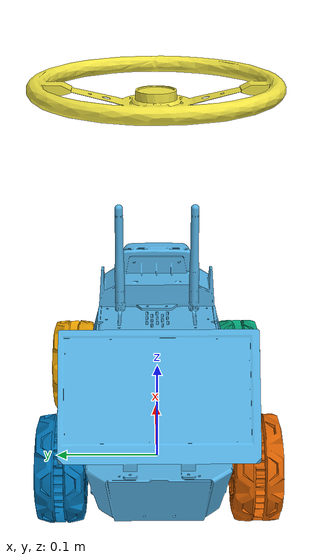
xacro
<?xml version="1.0"?>

<robot name="limo_four_diff" xmlns:xacro="http://ros.org/wiki/xacro">

    <xacro:arg name="robot_name" default="box_bot"/>
    <xacro:property name="general_robot_name" value="$(arg robot_name)"/>

    <xacro:include filename="$(find limo_description)/urdf/limo_xacro.xacro" />
    <xacro:include filename="$(find limo_description)/urdf/limo_steering_hinge.xacro" />

    <!-- Variables -->
    <xacro:property name="M_PI" value="3.14159"/>

    <!-- Vehicle Geometries -->
    <xacro:property name="base_x_size" value="0.13" />
    <xacro:property name="base_y_size" value="0.12" />
    <xacro:property name="base_z_size" value="0.1" />

    <xacro:property name="wheelbase" value="0.2"/>
    <xacro:property name="track" value="0.13"/>
    <xacro:property name="wheel_vertical_offset" value="-0.10" />
    <xacro:property name="base_mass" value="2.1557"/>

    <xacro:property name="wheel_length" value="0.001" />
    <xacro:property name="wheel_radius" value="0.045" />

  <link name="base_footprint"/>

  <joint name="base_joint" type="fixed">
    <parent link="base_footprint"/>
    <child link="base_link"/>
    <origin xyz="0.0 0.0 0.15" rpy="0 0 0"/>
  </joint>
    <!-- Base link -->
    <link name="base_link">
        <visual>
            <origin xyz="0 0 -0.15" rpy="0 0 1.57" />
            <geometry>
                <mesh filename="package://limo_description/meshes/limo_optimal.dae" scale="1 1 1"/>
            </geometry>
        </visual>
        <collision>
            <origin xyz="0 0 0" rpy="0 0 0" />
          <geometry>
              <box size="${base_x_size} ${base_y_size} ${base_z_size}"/>
          </geometry>
        </collision>
    </link>

    <link name="inertial_link">
        <inertial>
            <origin xyz="0.0 0.0 0.0" />
            <mass value="${base_mass}" />
            <inertia ixx="0.0043832566666666675" ixy="0" ixz="0"
                     iyy="0.004832360833333334" iyz="0"
                     izz="0.005622784166666667" />
        </inertial>
    </link>

    <joint name="inertial_joint" type="fixed">
        <origin xyz="0 0 0" rpy="0 0 0" />
        <parent link="base_link" />
        <child link="inertial_link" />
    </joint>

    <xacro:limo_laser parent_prefix="base_link" frame_prefix="laser">
        <origin xyz="0.103 0 -0.034" rpy="0 0 0"/>
    </xacro:limo_laser>

    <xacro:limo_depth_camera parent_prefix="base_link" frame_prefix="depth_camera">
        <origin xyz="0.084 0 0.026" rpy="0 0 0"/>
    </xacro:limo_depth_camera>

    <xacro:limo_imu parent_prefix="base_link" frame_prefix="imu">
        <origin xyz="0.0 0 -0.1" rpy="0 0 0"/>
    </xacro:limo_imu>

  <xacro:limo_left_steering_hinge parent_prefix="base_link" wheel_prefix="front_left">
    <origin xyz="${wheelbase/2} ${track/2} ${wheel_vertical_offset}" rpy="0 0  0" />
  </xacro:limo_left_steering_hinge>

  <xacro:limo_right_steering_hinge parent_prefix="base_link" wheel_prefix="front_right">
    <origin xyz="${wheelbase/2} ${-track/2} ${wheel_vertical_offset}" rpy="${M_PI} 0 0" />
  </xacro:limo_right_steering_hinge>

        <link name="main_steering_link">
            <inertial>
              <mass value="0.25" />
              <inertia ixx="0.00525" ixy="0" ixz="0" iyy="0.00035" iyz="0" izz="0.00525" />
              <origin xyz="0 0 0" />

            </inertial>
            <visual>
                <origin xyz="0 0 0" rpy="0 0 0" />
                <geometry>
                  <mesh filename="package://limo_description/meshes/steering.dae" scale="1 1 1"/>
                </geometry>
            </visual>

        </link>

        <joint name="main_steering" type="revolute">
            <parent link="base_link"/>
            <child link="main_steering_link"/>
            <origin xyz="${wheelbase/2} 0.0 ${wheel_vertical_offset * -2.0}" rpy="${M_PI} 0 0" />
            <axis xyz="0 0 -1" />
            <limit lower="-0.523598767" upper="0.523598767" effort="1000" velocity="10.0" />
            <dynamics damping="0.0" friction="0.0"/>
        </joint>

    <xacro:limo_wheel parent_prefix="base_link" wheel_prefix="rear_left" reflect="1" fixed_on="false">
        <origin xyz="${-wheelbase/2} ${track/2} ${wheel_vertical_offset}" rpy="0 0 0" />
    </xacro:limo_wheel>

    <xacro:limo_wheel parent_prefix="base_link" wheel_prefix="rear_right" reflect="-1" fixed_on="false">
        <origin xyz="${-wheelbase/2} ${-track/2} ${wheel_vertical_offset}" rpy="${M_PI} 0 0" />
    </xacro:limo_wheel>

<xacro:include filename="$(find limo_description)/urdf/limo_four_acker.gazebo" />

    <gazebo>
        <plugin name="gazebo_ros_ackermann_drive_$(arg robot_name)" filename="libtc_gazebo_ros_ackermann_drive.so">

        <ros>
          <namespace>$(arg robot_name)</namespace>
          <remapping>cmd_vel:=cmd_vel</remapping>
          <remapping>odom:=odom</remapping>
          <remapping>distance:=distance</remapping>
          <remapping>steerangle:=steerangle</remapping>
        </ros>

        <update_rate>100.0</update_rate>

        <!-- wheels -->
        <front_left_joint>front_left_wheel</front_left_joint>
        <front_right_joint>front_right_wheel</front_right_joint>
        <rear_left_joint>rear_left_wheel</rear_left_joint>
        <rear_right_joint>rear_right_wheel</rear_right_joint>
        <left_steering_joint>front_left_steering</left_steering_joint>
        <right_steering_joint>front_right_steering</right_steering_joint>
        <steering_wheel_joint>main_steering</steering_wheel_joint>

        <!-- Max absolute steer angle for tyre in radians-->
        <!-- Any cmd_vel angular z greater than this would be capped -->
        <max_steer>0.6458</max_steer>

        <!-- Max absolute steering angle of steering wheel -->
        <max_steering_angle>7.85</max_steering_angle>

        <!-- Max absolute linear speed in m/s -->
        <max_speed>20</max_speed>

        <!-- PID tuning -->
        <left_steering_pid_gain>100 0 1</left_steering_pid_gain>
        <left_steering_i_range>0 0</left_steering_i_range>
        <right_steering_pid_gain>100 0 1</right_steering_pid_gain>
        <right_steering_i_range>0 0</right_steering_i_range>
        <linear_velocity_pid_gain>0.5 0 0</linear_velocity_pid_gain>
        <linear_velocity_i_range>0 0</linear_velocity_i_range>

        <!-- output -->
        <publish_odom>true</publish_odom>
        <publish_odom_tf>true</publish_odom_tf>
        <publish_wheel_tf>true</publish_wheel_tf>
        <publish_distance>true</publish_distance>
        <publish_steerangle>true</publish_steerangle>

        <odometry_frame>odom</odometry_frame>
        <robot_base_frame>base_footprint</robot_base_frame>

      </plugin>
    </gazebo>

    <gazebo reference="imu_link">
    <gravity>true</gravity>
    <sensor name="twr_imu__$(arg robot_name)" type="imu">
      <always_on>true</always_on>
      <update_rate>100</update_rate>
      <visualize>true</visualize>
      <imu>
        <orientation>
          <x>
            <noise type="gaussian">
              <mean>0.0</mean>
              <stddev>2e-3</stddev>
            </noise>
          </x>
          <y>
            <noise type="gaussian">
              <mean>0.0</mean>
              <stddev>2e-3</stddev>
            </noise>
          </y>
          <z>
            <noise type="gaussian">
              <mean>0.0</mean>
              <stddev>2e-3</stddev>
            </noise>
          </z>
        </orientation>
        <angular_velocity>
          <x>
            <noise type="gaussian">
              <mean>0.0</mean>
              <stddev>2e-4</stddev>
            </noise>
          </x>
          <y>
            <noise type="gaussian">
              <mean>0.0</mean>
              <stddev>2e-4</stddev>
            </noise>
          </y>
          <z>
            <noise type="gaussian">
              <mean>0.0</mean>
              <stddev>2e-4</stddev>
            </noise>
          </z>
        </angular_velocity>
        <linear_acceleration>
          <x>
            <noise type="gaussian">
              <mean>0.0</mean>
              <stddev>1.7e-2</stddev>
            </noise>
          </x>
          <y>
            <noise type="gaussian">
              <mean>0.0</mean>
              <stddev>1.7e-2</stddev>
            </noise>
          </y>
          <z>
            <noise type="gaussian">
              <mean>0.0</mean>
              <stddev>1.7e-2</stddev>
            </noise>
          </z>
        </linear_acceleration>
      </imu>
      <plugin name="two_wheeled_robot_imu_$(arg robot_name)" filename="libgazebo_ros_imu_sensor.so">
        <initial_orientation_as_reference>false</initial_orientation_as_reference>
        <frame_name>imu_link</frame_name>
        <ros>
          <remapping>~/out:=$(arg robot_name)/imu</remapping>
        </ros>
      </plugin>
    </sensor>
</gazebo>
<gazebo reference="laser_link">
    <sensor name="laser_$(arg robot_name)" type="ray">
      <always_on>true</always_on>
      <visualize>false</visualize>
      <update_rate>10</update_rate>
      <ray>
        <scan>
          <horizontal>
            <samples>120</samples>
            <resolution>1.000000</resolution>
            <min_angle>-3.14159</min_angle>
            <max_angle>3.14159</max_angle>
          </horizontal>
        </scan>
        <range>
          <min>0.3</min>
          <max>15.0</max>
          <resolution>0.015</resolution>
        </range>
        <noise>
          <type>gaussian</type>
          <mean>0.0</mean>
          <stddev>0.01</stddev>
        </noise>
      </ray>
      <plugin name="scan_$(arg robot_name)" filename="libgazebo_ros_ray_sensor.so">
        <ros>
          <remapping>~/out:=$(arg robot_name)/scan</remapping>
        </ros>
        <output_type>sensor_msgs/LaserScan</output_type>
        <frame_name>laser_link</frame_name>
      </plugin>
    </sensor>
  </gazebo>

    <link name="camera_depth_optical_frame"/>

    <joint name="camera_depth_optical_joint" type="fixed">
      <origin xyz="0 0 0" rpy="${-M_PI/2} 0 ${-M_PI/2}" />
      <parent link="depth_camera_link" />
      <child link="camera_depth_optical_frame" />
    </joint>

<gazebo reference="depth_camera_link">
          <sensor name="sensor_camera_$(arg robot_name)" type="depth">
            <pose>0.0 0.0 0.0 0.0 0.0 0.0</pose>
            <always_on>1</always_on>
            <update_rate>10</update_rate>
            <visualize>1</visualize>

            <camera name="limo_camera">
              <image>
                <format>R8G8B8</format>
                <width>400</width>
                <height>400</height>
              </image>
              <clip>
                <near>0.01</near>
                <far>10.0</far>
              </clip>
            </camera>

            <plugin name="gazebo_ros_depth_camera_sensor_$(arg robot_name)" filename="libgazebo_ros_camera.so">

              <ros>
                <namespace>/$(arg robot_name)</namespace>
                <argument>limo_camera/image_raw:=limo_camera/image</argument>
                <argument>limo_camera/image_depth:=limo_camera/depth/camera_image_depth</argument>
                <argument>limo_camera/camera_info:=limo_camera/camera_info_raw</argument>
                <argument>limo_camera/camera_info_depth:=limo_camera/camera_info_depth</argument>
                <argument>limo_camera/points:=limo_camera/camera_points</argument>
              </ros>
              <camera_name>depth_camera_link</camera_name>
              <frame_name>camera_depth_optical_frame</frame_name>
              <hack_baseline>0.07</hack_baseline>
              <min_depth>0.001</min_depth>

            </plugin>
        </sensor>
          </gazebo>

</robot>

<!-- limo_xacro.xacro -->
<robot name="limo_xacro" xmlns:xacro="http://ros.org/wiki/xacro">
    <xacro:macro name="limo_wheel" params="parent_prefix wheel_prefix reflect *joint_pose visual_on:=true fixed_on:=false">
        <link name="${wheel_prefix}_wheel_link">
            <inertial>
                <origin xyz="0 ${wheel_length/2} 0" rpy="1.57 0 0" />
                <mass value="0.5" />
                <inertia ixx="0.00033749999999999996" ixy="0" ixz="0" iyy="0.00033749999999999996" iyz="0" izz="0.00050625" />
            </inertial>
            <xacro:if value="${visual_on}">
                <visual>
                    <origin xyz="0 0 0" rpy="0 0 0" />
                    <geometry>
                        <mesh filename="package://limo_description/meshes/limo_optimal_wheels.dae" />
                    </geometry>
                </visual>
            </xacro:if>
            <collision>
              <origin xyz="0 ${wheel_length/2} 0" rpy="1.57 0 0" />
              <geometry>
                  <cylinder length="${wheel_length}" radius="${wheel_radius}" />
              </geometry>
            </collision>
        </link>

        <!-- Conditionally set the joint type -->
        <xacro:if value="${fixed_on}">
            <joint name="${wheel_prefix}_wheel" type="fixed">
                <parent link="${parent_prefix}"/>
                <child link="${wheel_prefix}_wheel_link"/>
                <xacro:insert_block name="joint_pose"/>
            </joint>
        </xacro:if>
        <xacro:unless value="${fixed_on}">
            <joint name="${wheel_prefix}_wheel" type="continuous">
                <parent link="${parent_prefix}"/>
                <child link="${wheel_prefix}_wheel_link"/>
                <xacro:insert_block name="joint_pose"/>
                <axis xyz="0 ${reflect*1} 0"/>
                <limit effort="100.0" velocity="10.0"/>
            </joint>
        </xacro:unless>

    </xacro:macro>

    <xacro:macro name="limo_laser" params="parent_prefix frame_prefix *joint_pose">
        <link name='${frame_prefix}_link'>
            <pose>0 0 0 0 0 0</pose>
            <inertial>
                <mass value="0.1"/>
                <origin xyz="0.0 0 0" rpy="0 0 0"/>
                <inertia
                    ixx="1e-6" ixy="0" ixz="0"
                    iyy="1e-6" iyz="0"
                    izz="1e-6"
                />
            </inertial>
            <visual name='laser_visual'>
                <origin xyz="0 0 0" rpy="0 0 0"/>
                <geometry>
                    <cylinder radius="0.02" length="0.01"/>
                </geometry>
            </visual>
            <collision name='laser_collision'>
                <origin xyz="0 0 0" rpy="0 0 0"/>
                <geometry>
                    <cylinder radius="0.032" length="0.016"/>
                </geometry>
            </collision>
        </link>
        <joint type="fixed" name="laser_joint">
            <xacro:insert_block name="joint_pose"/>
            <child link="${frame_prefix}_link"/>
            <parent link="${parent_prefix}"/>
        </joint>
        <gazebo reference="${frame_prefix}_link">
            <material>Gazebo/Yellow</material>
        </gazebo>
    </xacro:macro>

    <xacro:macro name="limo_depth_camera" params="parent_prefix frame_prefix *joint_pose">
        <link name='${frame_prefix}_link'>
            <pose>0 0 0 0 0 0</pose>
            <inertial>
                <mass value="0.1"/>
                <origin xyz="0.0 0 0" rpy="0 0 0"/>
                <inertia
                    ixx="1e-6" ixy="0" ixz="0"
                    iyy="1e-6" iyz="0"
                    izz="1e-6"
                />
            </inertial>
            <collision name='depth_camera_collision'>
                <origin xyz="0 0 0" rpy="0 0 0"/>
                <geometry>
                    <box size="0.02 0.06 0.015"/>
                </geometry>
            </collision>

        </link>

        <joint type="fixed" name="depth_camera_joint">
            <xacro:insert_block name="joint_pose"/>
            <child link="${frame_prefix}_link"/>
            <parent link="${parent_prefix}"/>
        </joint>
        <link name="depth_link"></link>

        <joint name="${frame_prefix}_to_camera_joint" type="fixed">
            <origin xyz="0 0 0" rpy="${-M_PI/2} 0 ${-M_PI/2} "/>
            <parent link="${frame_prefix}_link"/>
            <child link="depth_link"/>
          </joint>

        <gazebo reference="${frame_prefix}_link">
            <material>Gazebo/Yellow</material>
        </gazebo>
    </xacro:macro>

    <xacro:macro name="limo_imu" params="parent_prefix frame_prefix  *joint_pose">
        <link name='${frame_prefix}_link'>
            <pose>0 0 0 0 0 0</pose>
            <inertial>
                <mass value="0.01"/>
                <origin xyz="0.0 0 0" rpy="0 0 0"/>
                <inertia
                    ixx="1e-7" ixy="0" ixz="0"
                    iyy="1e-7" iyz="0"
                    izz="1e-7"
                />
            </inertial>
            <visual name='imu_visual'>
                <origin xyz="0 0 0" rpy="0 0 0"/>
                <geometry>
                    <box size="0.001 0.001 0.001"/>
                </geometry>
            </visual>
            <collision name='imu_collision'>
                <origin xyz="0 0 0" rpy="0 0 0"/>
                <geometry>
                    <box size="0.001 0.001 0.001"/>
                </geometry>
            </collision>
        </link>
        <joint type="fixed" name="imu_joint">
            <xacro:insert_block name="joint_pose"/>
            <child link="${frame_prefix}_link"/>
            <parent link="${parent_prefix}"/>
        </joint>
        <gazebo reference="${frame_prefix}_link">
            <material>Gazebo/Yellow</material>
        </gazebo>
    </xacro:macro>
</robot>

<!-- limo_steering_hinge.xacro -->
<robot name="limo_steering_hinge" xmlns:xacro="http://ros.org/wiki/xacro">

    <xacro:macro name="limo_left_steering_hinge" params="parent_prefix wheel_prefix *joint_pose">
        <link name="${wheel_prefix}">
            <inertial>
              <mass value="0.25" />
              <inertia ixx="0.00525" ixy="0" ixz="0" iyy="0.00035" iyz="0" izz="0.00525" />
              <origin xyz="0 0 0" />

            </inertial>
            <visual>
                <origin xyz="0 0 0" rpy="0 0 0" />
                <geometry>
                  <cylinder length="0.0001" radius="0.0001" />
                </geometry>
            </visual>
        </link>

        <joint name="${wheel_prefix}_steering" type="revolute">
            <parent link="${parent_prefix}"/>
            <child link="${wheel_prefix}"/>
            <xacro:insert_block name="joint_pose"/>
            <axis xyz="0 0 1" />
            <limit lower="-0.523598767" upper="0.523598767" effort="1000" velocity="1.0" />
            <dynamics damping="0.0" friction="2.0"/>

        </joint>

        <link name="${wheel_prefix}_wheel_link">
          <inertial>
            <mass value="0.25" />
            <inertia ixx="0.00525" ixy="0" ixz="0" iyy="0.00035" iyz="0" izz="0.00525" />
            <origin xyz="0 0 0" />

          </inertial>
          <visual>
              <origin xyz="0 0 0" rpy="0 0 0" />
              <geometry>
                  <mesh filename="package://limo_description/meshes/limo_optimal_wheels.dae" />
              </geometry>
          </visual>
          <collision>
            <origin xyz="0 ${wheel_length/2} 0" rpy="1.57 0 0" />
            <geometry>
                <cylinder length="${wheel_length}" radius="${wheel_radius}" />

            </geometry>
          </collision>
      </link>

      <joint name="${wheel_prefix}_wheel" type="continuous">
          <parent link="${wheel_prefix}"/>
          <child link="${wheel_prefix}_wheel_link"/>
          <origin xyz="0 0 0" rpy="0 0  0" />
          <axis xyz="0 1 0"/>
          <limit effort="100.0" velocity="10.0"/>
      </joint>
    </xacro:macro>

    <xacro:macro name="limo_right_steering_hinge" params="parent_prefix wheel_prefix *joint_pose">
        <link name="${wheel_prefix}">
          <inertial>
            <mass value="0.25" />
            <inertia ixx="0.00525" ixy="0" ixz="0" iyy="0.00035" iyz="0" izz="0.00525" />
            <origin xyz="0 0 0" />

          </inertial>
            <visual>
                <origin xyz="0 0 0" rpy="0 0 0" />
                <geometry>
                  <cylinder length="0.0001" radius="0.0001" />
                </geometry>
            </visual>
        </link>

        <joint name="${wheel_prefix}_steering" type="revolute">
            <parent link="${parent_prefix}"/>
            <child link="${wheel_prefix}"/>
            <xacro:insert_block name="joint_pose"/>
            <axis xyz="0 0 -1"/>
            <limit lower="-0.523598767" upper="0.523598767" effort="1000" velocity="1.0" />
            <dynamics damping="0.0" friction="2.0"/>
        </joint>

        <link name="front_right_wheel_link">
          <inertial>
            <mass value="0.25" />
            <inertia ixx="0.00525" ixy="0" ixz="0" iyy="0.00035" iyz="0" izz="0.00525" />
            <origin xyz="0 0 0" />
          </inertial>
          <visual>
              <origin xyz="0 0 0" rpy="0 0 0" />
              <geometry>
                  <mesh filename="package://limo_description/meshes/limo_optimal_wheels.dae" />
              </geometry>
          </visual>
          <collision>
            <origin xyz="0 ${wheel_length/2} 0" rpy="1.57 0 0" />
            <geometry>
                <cylinder length="${wheel_length}" radius="${wheel_radius}" />
            </geometry>
          </collision>
      </link>

      <joint name="${wheel_prefix}_wheel" type="continuous">
          <parent link="${wheel_prefix}"/>
          <child link="front_right_wheel_link"/>
          <origin xyz="0 0 0" rpy="0 0  0" />
          <axis xyz="0 -1 0"/>
          <limit effort="100.0" velocity="10.0"/>
      </joint>
    </xacro:macro>
</robot>
